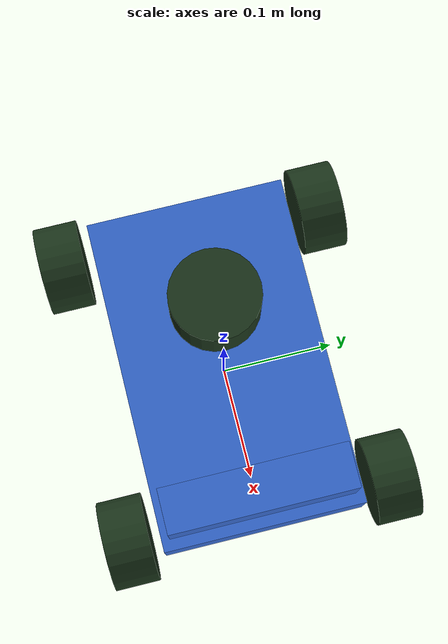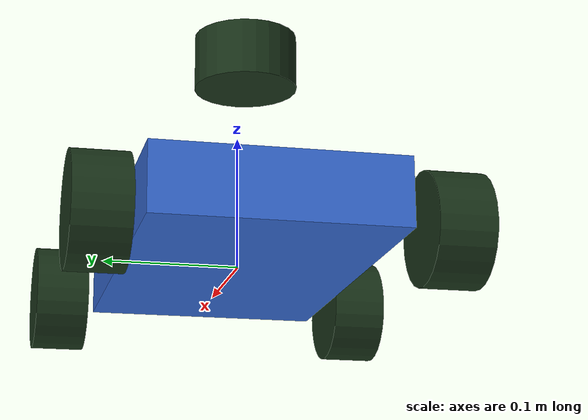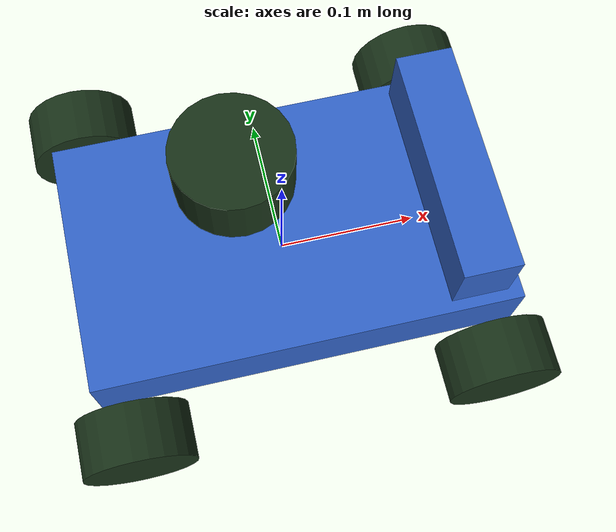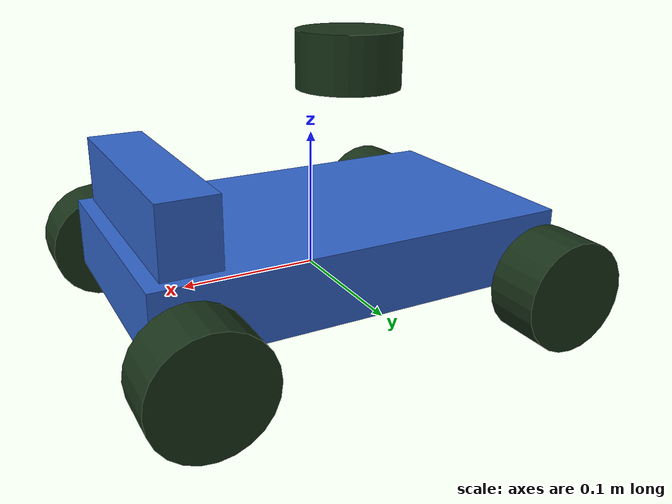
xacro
<?xml version="1.0"?>
<robot name="mi_robot" xmlns:xacro="http://www.ros.org/wiki/xacro">

  <!-- ===================== Parámetros de la variante ===================== -->
  <!-- TODO (Parte 1): reemplace cada ${TODO} por el valor de su variante -->
  <xacro:property name="rueda_radio" value="0.04"/>
  <xacro:property name="distancia_ejes" value="0.26"/>      <!-- wheelbase (m) -->
  <xacro:property name="separacion_ruedas" value="0.24"/>   <!-- track (m) -->
  <xacro:property name="lx" value="${distancia_ejes / 2.0}"/>
  <xacro:property name="ly" value="${separacion_ruedas / 2.0}"/>
  <xacro:property name="rueda_ancho" value="0.04"/>
  <xacro:property name="rueda_masa" value="0.3"/>

  <!-- Chasis (dado) -->
  <xacro:property name="chasis_largo" value="${distancia_ejes + 0.04}"/>
  <xacro:property name="chasis_ancho" value="${separacion_ruedas - rueda_ancho - 0.02}"/>
  <xacro:property name="chasis_alto" value="0.05"/>
  <xacro:property name="chasis_masa" value="3.0"/>

  <!-- ===================== Inercias (dadas) ===================== -->
  <xacro:macro name="inercia_caja" params="m x y z">
    <inertia ixx="${m*(y*y + z*z)/12.0}" ixy="0" ixz="0"
             iyy="${m*(x*x + z*z)/12.0}" iyz="0"
             izz="${m*(x*x + y*y)/12.0}"/>
  </xacro:macro>
  <!-- Cilindro con eje a lo largo de z local -->
  <xacro:macro name="inercia_cilindro" params="m r h">
    <inertia ixx="${m*(3*r*r + h*h)/12.0}" ixy="0" ixz="0"
             iyy="${m*(3*r*r + h*h)/12.0}" iyz="0"
             izz="${m*r*r/2.0}"/>
  </xacro:macro>

  <!-- ===================== Chasis (dado) ===================== -->
  <link name="base_link">
    <visual>
      <origin xyz="0 0 0.02" rpy="0 0 0"/>
      <geometry><box size="${chasis_largo} ${chasis_ancho} ${chasis_alto}"/></geometry>
      <material name="azul"><color rgba="0.2 0.4 0.8 1"/></material>
    </visual>
    <collision>
      <origin xyz="0 0 0.02" rpy="0 0 0"/>
      <geometry><box size="${chasis_largo} ${chasis_ancho} ${chasis_alto}"/></geometry>
    </collision>
    <inertial>
      <origin xyz="0 0 0.02" rpy="0 0 0"/>
      <mass value="${chasis_masa}"/>
      <xacro:inercia_caja m="${chasis_masa}" x="${chasis_largo}" y="${chasis_ancho}" z="${chasis_alto}"/>
    </inertial>
  </link>

  <!-- ===================== Ruedas (Parte 1) ===================== -->
  <xacro:macro name="rueda" params="prefijo x_signo y_signo">
    <link name="rueda_${prefijo}">
      <visual>
        <origin xyz="0 0 0" rpy="0 0 0"/>
        <geometry><cylinder radius="${rueda_radio}" length="${rueda_ancho}"/></geometry>
        <material name="negro"><color rgba="0.1 0.2 0.1 1"/></material>
      </visual>
      <collision>
        <origin xyz="0 0 0" rpy="0 0 0"/>
        <geometry><sphere radius="${rueda_radio}"/></geometry>
      </collision>
      <inertial>
        <origin xyz="0 0 0" rpy="0 0 0"/>
        <mass value="${rueda_masa}"/>
        <xacro:inercia_cilindro m="${rueda_masa}" r="${rueda_radio}" h="${rueda_ancho}"/>
      </inertial>

    </link>
    <joint name="joint_rueda_${prefijo}" type="continuous">
        <parent link="base_link"/>
        <child link="rueda_${prefijo}"/>
        <origin xyz="${0.13*x_signo} ${0.12*y_signo} 0" rpy="${-pi/2} 0 0"/>
        <axis xyz="0 0 1"/>
    </joint>

  </xacro:macro>

  <xacro:rueda prefijo="del_izq" x_signo="1" y_signo="1"/>
  <xacro:rueda prefijo="del_der" x_signo="1" y_signo="-1"/>
  <xacro:rueda prefijo="tra_izq" x_signo="-1" y_signo="1"/>
  <xacro:rueda prefijo="tra_der" x_signo="-1" y_signo="-1"/>
  <!-- TODO: instanciar del_der, tra_izq y tra_der -->

  <!-- ===================== RPLIDAR A3 (Parte 2) ===================== -->
  <!-- TODO: link "lidar_link" (cilindro) con dimensiones y masa de la hoja de datos:
       visual, collision e inertial -->

  <!-- TODO: joint fijo "joint_lidar" base_link -> lidar_link en la posición de su variante -->

    <link name="lidar_link">
      <visual>
        <origin xyz="0 0 0" rpy="0 0 0"/>
        <geometry><cylinder radius="0.038" length="0.041"/></geometry>
        <material name="negro"><color rgba="0.1 0.2 0.1 1"/></material>
      </visual>
      <collision>
        <origin xyz="0 0 0" rpy="0 0 0"/>
        <geometry><sphere radius="0.038"/></geometry>
      </collision>
      <inertial>
        <origin xyz="0 0 0.0" rpy="0 0 0"/>
        <mass value="0.19"/>
        <xacro:inercia_cilindro m="0.19" r="${0.038}" h="${0.041}"/>
      </inertial>

    </link>

  <gazebo reference="lidar_link">
    <sensor name="rplidar_a3" type="gpu_lidar">
      <topic>/scan</topic>
      <gz_frame_id>lidar_link</gz_frame_id>
      <update_rate>5</update_rate>
      <always_on>1</always_on>
      <visualize>true</visualize>
      <lidar>
        <scan>
          <horizontal>
            <samples>3200</samples>          <!-- muestras por vuelta -->
            <resolution>1</resolution>
            <min_angle>${-pi}</min_angle>
            <max_angle>${pi}</max_angle>
          </horizontal>
        </scan>
        <range>
          <min>0.20</min>
          <max>25.0</max>
          <resolution>0.01</resolution>
        </range>
        <!-- TODO: ruido gaussiano, media 0, desviación 0.01 m -->
        <noise type="gaussian">
          <mean>0.0</mean>
          <stddev>0.01</stddev>
        </noise>
      </lidar>
    </sensor>
  </gazebo>

  <joint name="joint_lidar" type="fixed">
        <parent link="base_link"/>
        <child link="lidar_link"/>
        <origin xyz="-0.03 0 0.15" rpy="0 0 0"/>
        <axis xyz="0 0 1"/>
  </joint>

  <!-- ===================== Orbbec Astra (Parte 2) ===================== -->
  <!-- TODO: link "camara_link" (caja) con dimensiones y masa de la hoja de datos -->

  <!-- TODO: joint fijo "joint_camara" base_link -> camara_link en la posición de su variante -->

  <!-- TODO: link "camara_optica_link" y joint fijo "joint_camara_optica" desde
       camara_link con rpy = (-π/2, 0, -π/2) (REP-103) -->

  <link name="camara_link">
    <visual>
      <origin xyz="0 0 0" rpy="0 0 0"/>
      <geometry><box size="0.040 0.165 0.048"/></geometry>
      <material name="azul"><color rgba="0.2 0.4 0.8 1"/></material>
    </visual>
    <collision>
      <origin xyz="0 0 0" rpy="0 0 0"/>
      <geometry><box size="0.040 0.165 0.048"/></geometry>
    </collision>
    <inertial>
      <origin xyz="0 0 0" rpy="0 0 0"/>
      <mass value="0.31"/>
      <xacro:inercia_caja m="0.31" x="0.040" y="0.165" z="0.048"/>
    </inertial>
  </link>

  <gazebo reference="camara_link">
    <sensor name="astra" type="rgbd_camera">
      <topic>/camara</topic>
      <gz_frame_id>camara_link</gz_frame_id>
      <update_rate>30</update_rate>
      <always_on>1</always_on>
      <camera>
        <horizontal_fov>${58.4 * pi / 180}</horizontal_fov>   <!-- en radianes -->
        <image>
          <width>640</width>
          <height>480</height>
          <format>R8G8B8</format>
        </image>
        <clip>
          <near>0.4</near>
          <far>2</far>
        </clip>
        <depth_camera>
          <clip>
            <near>0.4</near>
            <far>2</far>
          </clip>
        </depth_camera>
      </camera>
    </sensor>
  </gazebo>

<joint name="joint_camara" type="fixed">
    <parent link="base_link"/>
    <child link="camara_link"/>
    <origin xyz="0.12 0 0.07" rpy="0 0 0"/>
</joint>

  <link name="camara_optica_link">
  </link>

  <joint name="joint_camara_optica" type="fixed">
      <parent link="camara_link"/>
      <child link="camara_optica_link"/>
      <origin xyz="0 0 0" rpy="${-pi/2} 0 ${-pi/2}"/>
  </joint>

  <!-- ===================== Plugins de Gazebo (Parte 1) ===================== -->
  <xacro:macro name="motor" params="prefijo">
    <plugin filename="gz-sim-joint-controller-system" name="gz::sim::systems::JointController">
      <joint_name>joint_rueda_${prefijo}</joint_name>
      <use_force_commands>false</use_force_commands>
      <topic>/vel_rueda_${prefijo}</topic>
    </plugin>
  </xacro:macro>

  <gazebo>
    <xacro:motor prefijo="del_izq"/>
    <xacro:motor prefijo="del_der"/>
    <xacro:motor prefijo="tra_izq"/>
    <xacro:motor prefijo="tra_der"/>
    <plugin filename="gz-sim-joint-state-publisher-system" name="gz::sim::systems::JointStatePublisher"></plugin>
    <!-- TODO: plugin gz-sim-joint-state-publisher-system (encoders) -->
  </gazebo>

</robot>
